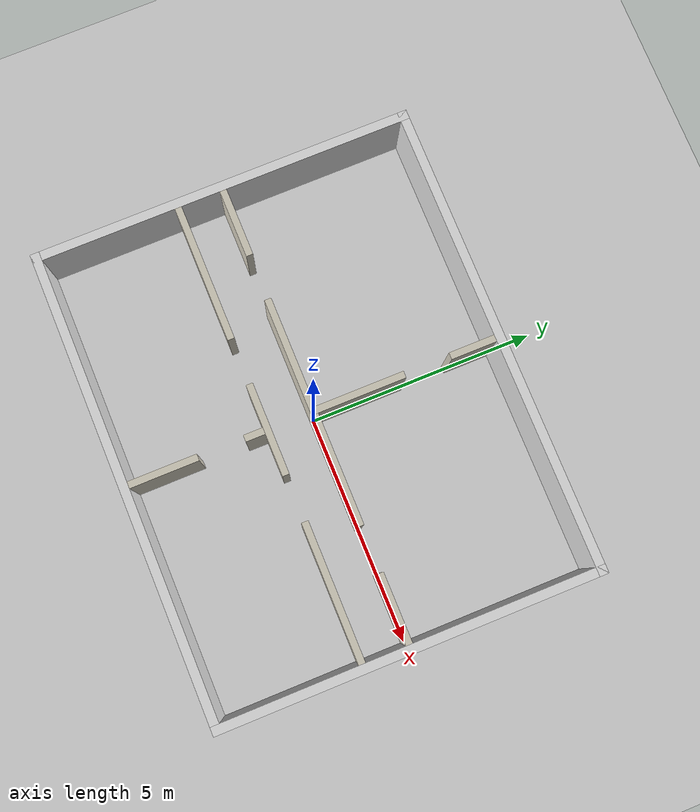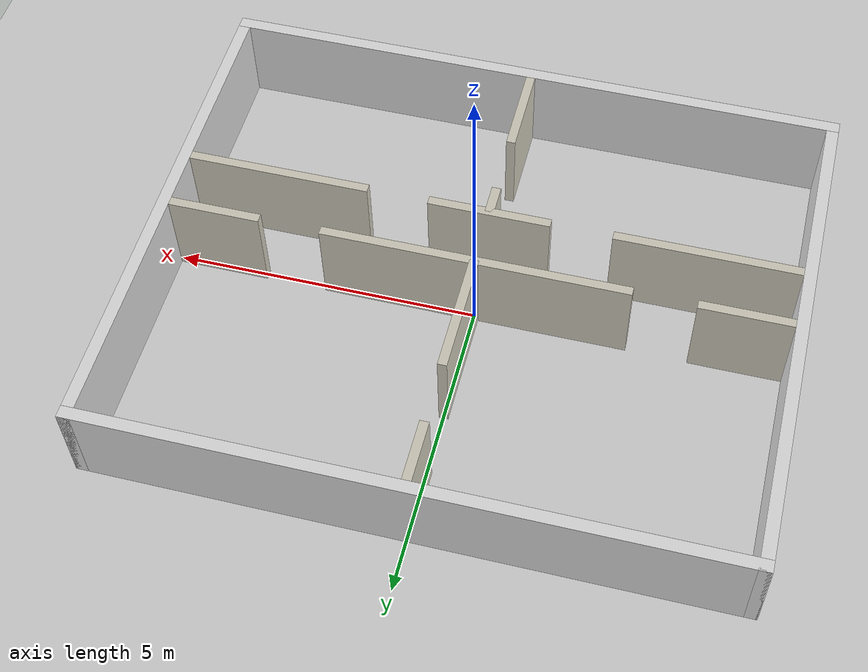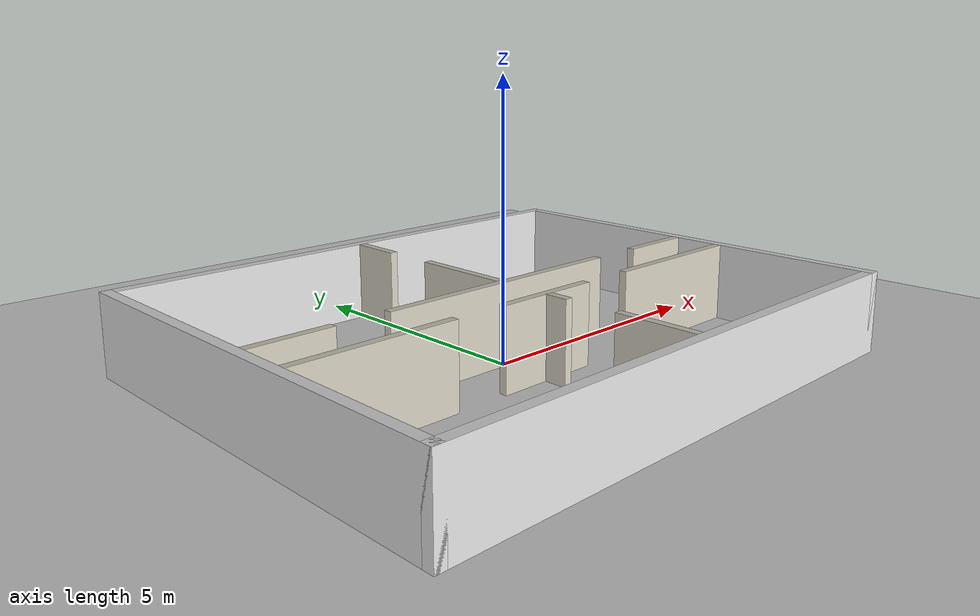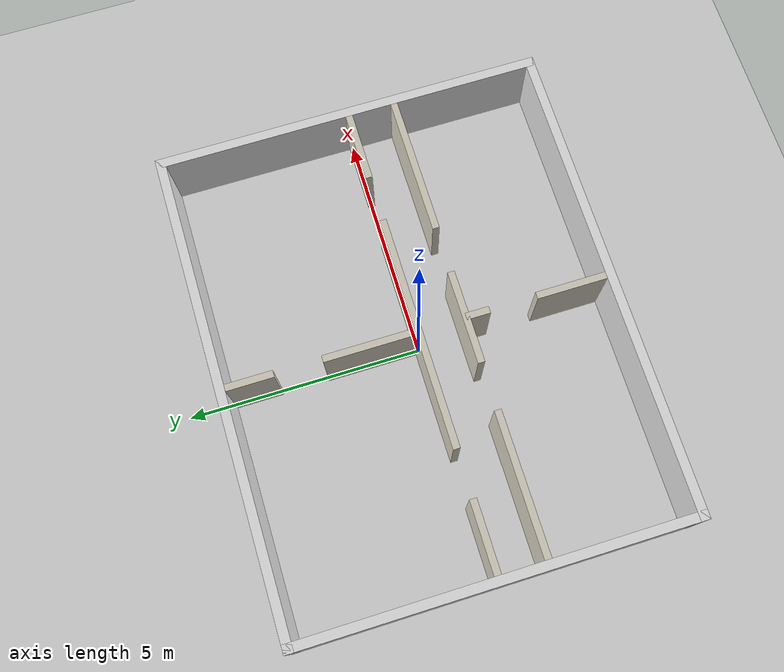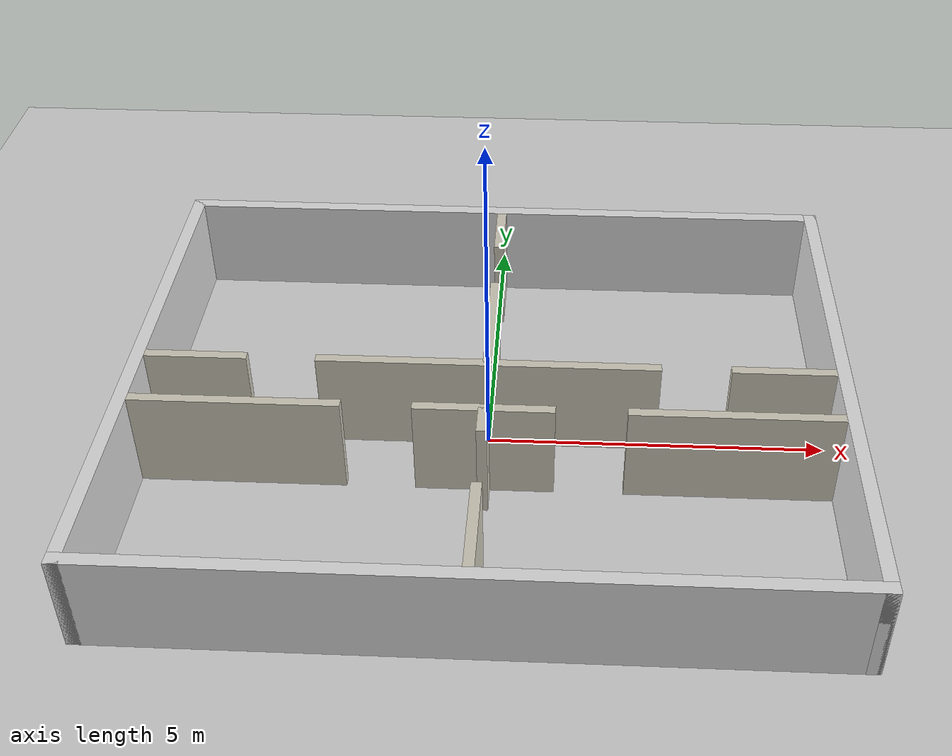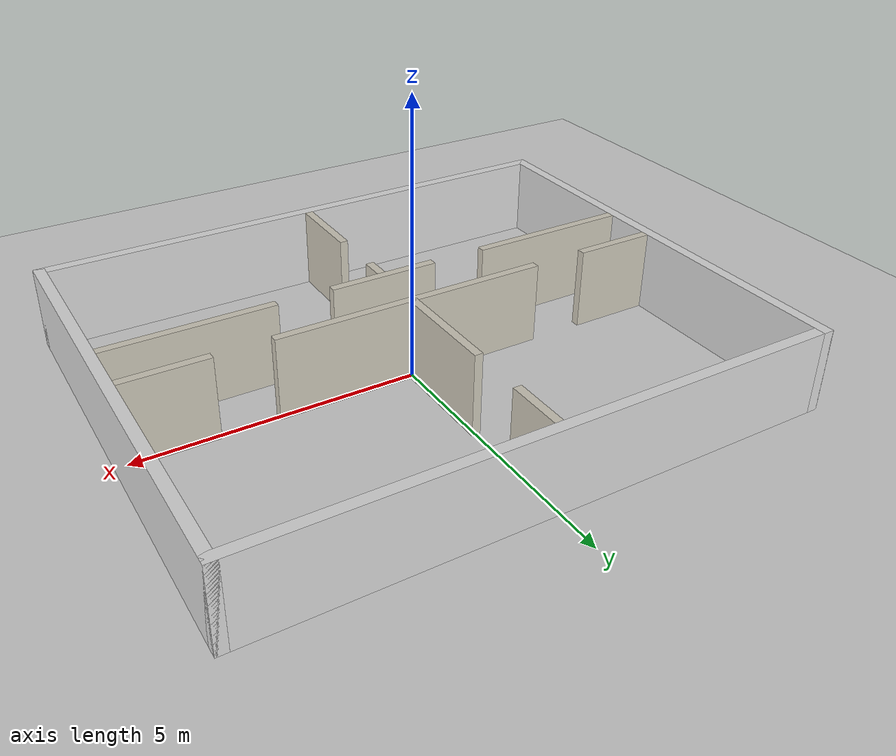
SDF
<?xml version="1.0" ?>
<sdf version="1.8">
  <world name="room_world">

    <scene>
      <ambient>0.6 0.6 0.6 1</ambient>
      <background>0.75 0.75 0.8 1</background>
      <shadows>false</shadows>
    </scene>

    <physics name="default_physics" default="1" type="ode">
      <max_step_size>0.001</max_step_size>
      <real_time_factor>1.0</real_time_factor>
      <real_time_update_rate>1000</real_time_update_rate>
    </physics>

    <plugin filename="gz-sim-physics-system" name="gz::sim::systems::Physics"/>
    <plugin filename="gz-sim-user-commands-system" name="gz::sim::systems::UserCommands"/>
    <plugin filename="gz-sim-scene-broadcaster-system" name="gz::sim::systems::SceneBroadcaster"/>
    <plugin filename="gz-sim-sensors-system" name="gz::sim::systems::Sensors">
      <render_engine>ogre2</render_engine>
    </plugin>
    <plugin filename="gz-sim-imu-system" name="gz::sim::systems::Imu"/>

    <light type="directional" name="sun">
      <cast_shadows>false</cast_shadows>
      <pose>0 0 10 0 0 0</pose>
      <diffuse>0.9 0.9 0.9 1</diffuse>
      <specular>0.2 0.2 0.2 1</specular>
      <attenuation>
        <range>1000</range>
        <constant>0.9</constant>
        <linear>0.01</linear>
        <quadratic>0.001</quadratic>
      </attenuation>
      <direction>-0.5 0.1 -0.9</direction>
    </light>

    <!-- 地面 -->
    <model name="ground_plane">
      <static>true</static>
      <link name="link">
        <collision name="collision">
          <geometry>
            <plane>
              <normal>0 0 1</normal>
              <size>30 30</size>
            </plane>
          </geometry>
          <surface>
            <friction>
              <ode>
                <mu>100</mu>
                <mu2>50</mu2>
              </ode>
            </friction>
          </surface>
        </collision>
        <visual name="visual">
          <geometry>
            <plane>
              <normal>0 0 1</normal>
              <size>30 30</size>
            </plane>
          </geometry>
          <material>
            <ambient>0.8 0.8 0.8 1</ambient>
            <diffuse>0.8 0.8 0.8 1</diffuse>
          </material>
        </visual>
      </link>
    </model>

    <!-- ===== 外墙 ===== -->
    <model name="wall_outer_north">
      <static>true</static>
      <pose>0 4.1 0.75 0 0 0</pose>
      <link name="link">
        <collision name="collision"><geometry><box><size>10.4 0.2 1.5</size></box></geometry></collision>
        <visual name="visual">
          <geometry><box><size>10.4 0.2 1.5</size></box></geometry>
          <material><ambient>0.85 0.85 0.85 1</ambient><diffuse>0.85 0.85 0.85 1</diffuse></material>
        </visual>
      </link>
    </model>

    <model name="wall_outer_south">
      <static>true</static>
      <pose>0 -4.1 0.75 0 0 0</pose>
      <link name="link">
        <collision name="collision"><geometry><box><size>10.4 0.2 1.5</size></box></geometry></collision>
        <visual name="visual">
          <geometry><box><size>10.4 0.2 1.5</size></box></geometry>
          <material><ambient>0.85 0.85 0.85 1</ambient><diffuse>0.85 0.85 0.85 1</diffuse></material>
        </visual>
      </link>
    </model>

    <model name="wall_outer_west">
      <static>true</static>
      <pose>-5.1 0 0.75 0 0 0</pose>
      <link name="link">
        <collision name="collision"><geometry><box><size>0.2 8.4 1.5</size></box></geometry></collision>
        <visual name="visual">
          <geometry><box><size>0.2 8.4 1.5</size></box></geometry>
          <material><ambient>0.85 0.85 0.85 1</ambient><diffuse>0.85 0.85 0.85 1</diffuse></material>
        </visual>
      </link>
    </model>

    <model name="wall_outer_east">
      <static>true</static>
      <pose>5.1 0 0.75 0 0 0</pose>
      <link name="link">
        <collision name="collision"><geometry><box><size>0.2 8.4 1.5</size></box></geometry></collision>
        <visual name="visual">
          <geometry><box><size>0.2 8.4 1.5</size></box></geometry>
          <material><ambient>0.85 0.85 0.85 1</ambient><diffuse>0.85 0.85 0.85 1</diffuse></material>
        </visual>
      </link>
    </model>

    <!-- ===== y = 0 隔墙（A/B 与走廊之间，门洞 x∈[-3.5,-2.5] 和 [2.5,3.5]） ===== -->
    <model name="wall_y0_west">
      <static>true</static>
      <pose>-4.25 0 0.75 0 0 0</pose>
      <link name="link">
        <collision name="collision"><geometry><box><size>1.5 0.15 1.5</size></box></geometry></collision>
        <visual name="visual">
          <geometry><box><size>1.5 0.15 1.5</size></box></geometry>
          <material><ambient>0.8 0.78 0.72 1</ambient><diffuse>0.8 0.78 0.72 1</diffuse></material>
        </visual>
      </link>
    </model>

    <model name="wall_y0_mid">
      <static>true</static>
      <pose>0 0 0.75 0 0 0</pose>
      <link name="link">
        <collision name="collision"><geometry><box><size>5.0 0.15 1.5</size></box></geometry></collision>
        <visual name="visual">
          <geometry><box><size>5.0 0.15 1.5</size></box></geometry>
          <material><ambient>0.8 0.78 0.72 1</ambient><diffuse>0.8 0.78 0.72 1</diffuse></material>
        </visual>
      </link>
    </model>

    <model name="wall_y0_east">
      <static>true</static>
      <pose>4.25 0 0.75 0 0 0</pose>
      <link name="link">
        <collision name="collision"><geometry><box><size>1.5 0.15 1.5</size></box></geometry></collision>
        <visual name="visual">
          <geometry><box><size>1.5 0.15 1.5</size></box></geometry>
          <material><ambient>0.8 0.78 0.72 1</ambient><diffuse>0.8 0.78 0.72 1</diffuse></material>
        </visual>
      </link>
    </model>

    <!-- ===== y = -1 隔墙（走廊与 C/D 之间，门洞 x∈[-2,-1] 和 [1,2]） ===== -->
    <model name="wall_ym1_west">
      <static>true</static>
      <pose>-3.5 -1 0.75 0 0 0</pose>
      <link name="link">
        <collision name="collision"><geometry><box><size>3.0 0.15 1.5</size></box></geometry></collision>
        <visual name="visual">
          <geometry><box><size>3.0 0.15 1.5</size></box></geometry>
          <material><ambient>0.8 0.78 0.72 1</ambient><diffuse>0.8 0.78 0.72 1</diffuse></material>
        </visual>
      </link>
    </model>

    <model name="wall_ym1_mid">
      <static>true</static>
      <pose>0 -1 0.75 0 0 0</pose>
      <link name="link">
        <collision name="collision"><geometry><box><size>2.0 0.15 1.5</size></box></geometry></collision>
        <visual name="visual">
          <geometry><box><size>2.0 0.15 1.5</size></box></geometry>
          <material><ambient>0.8 0.78 0.72 1</ambient><diffuse>0.8 0.78 0.72 1</diffuse></material>
        </visual>
      </link>
    </model>

    <model name="wall_ym1_east">
      <static>true</static>
      <pose>3.5 -1 0.75 0 0 0</pose>
      <link name="link">
        <collision name="collision"><geometry><box><size>3.0 0.15 1.5</size></box></geometry></collision>
        <visual name="visual">
          <geometry><box><size>3.0 0.15 1.5</size></box></geometry>
          <material><ambient>0.8 0.78 0.72 1</ambient><diffuse>0.8 0.78 0.72 1</diffuse></material>
        </visual>
      </link>
    </model>

    <!-- ===== x = 0 隔墙（A/B 之间，门洞 y∈[2,3]） ===== -->
    <model name="wall_x0_north_low">
      <static>true</static>
      <pose>0 1.0 0.75 0 0 0</pose>
      <link name="link">
        <collision name="collision"><geometry><box><size>0.15 2.0 1.5</size></box></geometry></collision>
        <visual name="visual">
          <geometry><box><size>0.15 2.0 1.5</size></box></geometry>
          <material><ambient>0.8 0.78 0.72 1</ambient><diffuse>0.8 0.78 0.72 1</diffuse></material>
        </visual>
      </link>
    </model>

    <model name="wall_x0_north_high">
      <static>true</static>
      <pose>0 3.5 0.75 0 0 0</pose>
      <link name="link">
        <collision name="collision"><geometry><box><size>0.15 1.0 1.5</size></box></geometry></collision>
        <visual name="visual">
          <geometry><box><size>0.15 1.0 1.5</size></box></geometry>
          <material><ambient>0.8 0.78 0.72 1</ambient><diffuse>0.8 0.78 0.72 1</diffuse></material>
        </visual>
      </link>
    </model>

    <!-- ===== x = 0 隔墙（C/D 之间，门洞 y∈[-2.5,-1.5]） ===== -->
    <model name="wall_x0_south_low">
      <static>true</static>
      <pose>0 -3.25 0.75 0 0 0</pose>
      <link name="link">
        <collision name="collision"><geometry><box><size>0.15 1.5 1.5</size></box></geometry></collision>
        <visual name="visual">
          <geometry><box><size>0.15 1.5 1.5</size></box></geometry>
          <material><ambient>0.8 0.78 0.72 1</ambient><diffuse>0.8 0.78 0.72 1</diffuse></material>
        </visual>
      </link>
    </model>

    <model name="wall_x0_south_high">
      <static>true</static>
      <pose>0 -1.25 0.75 0 0 0</pose>
      <link name="link">
        <collision name="collision"><geometry><box><size>0.15 0.5 1.5</size></box></geometry></collision>
        <visual name="visual">
          <geometry><box><size>0.15 0.5 1.5</size></box></geometry>
          <material><ambient>0.8 0.78 0.72 1</ambient><diffuse>0.8 0.78 0.72 1</diffuse></material>
        </visual>
      </link>
    </model>

  </world>
</sdf>
